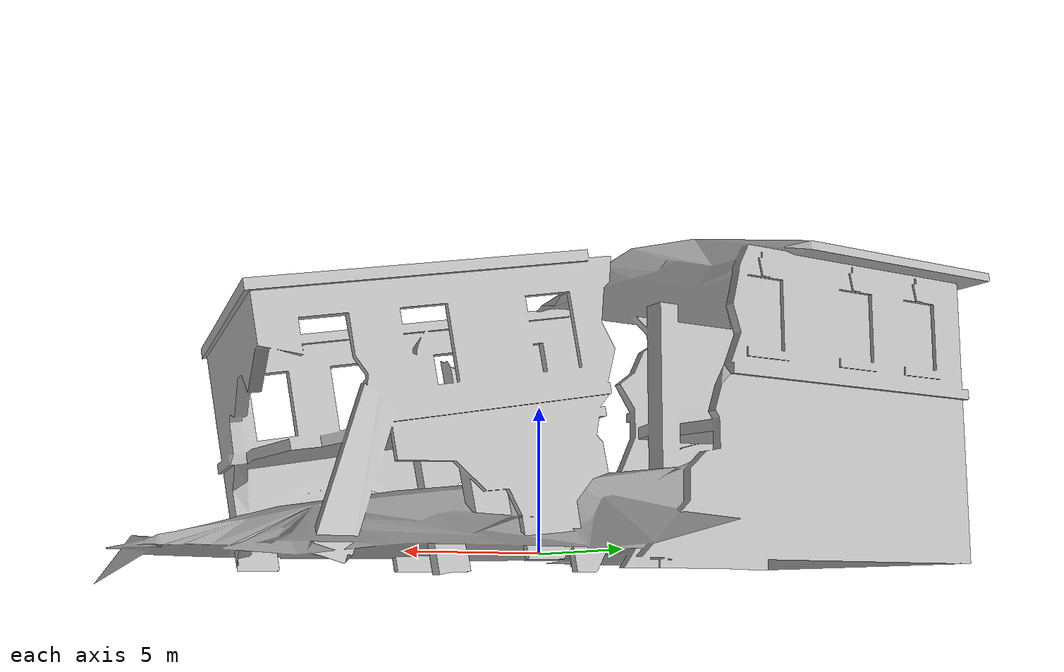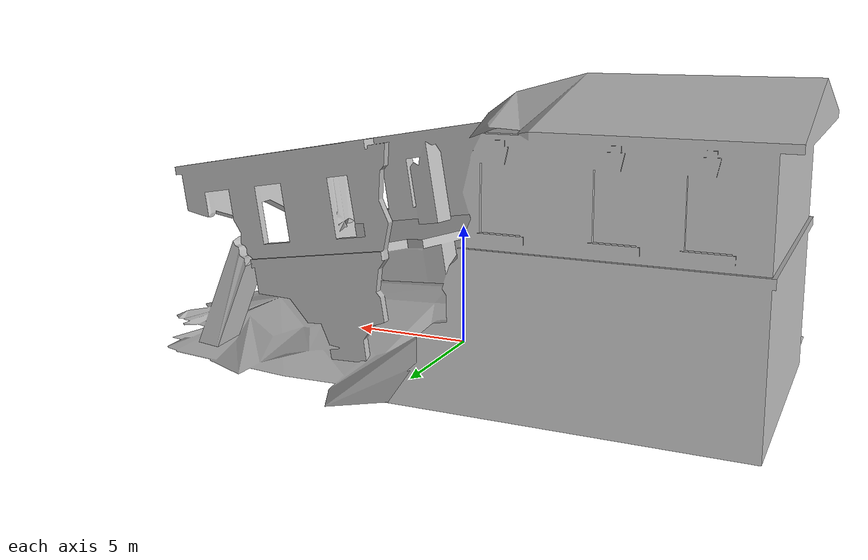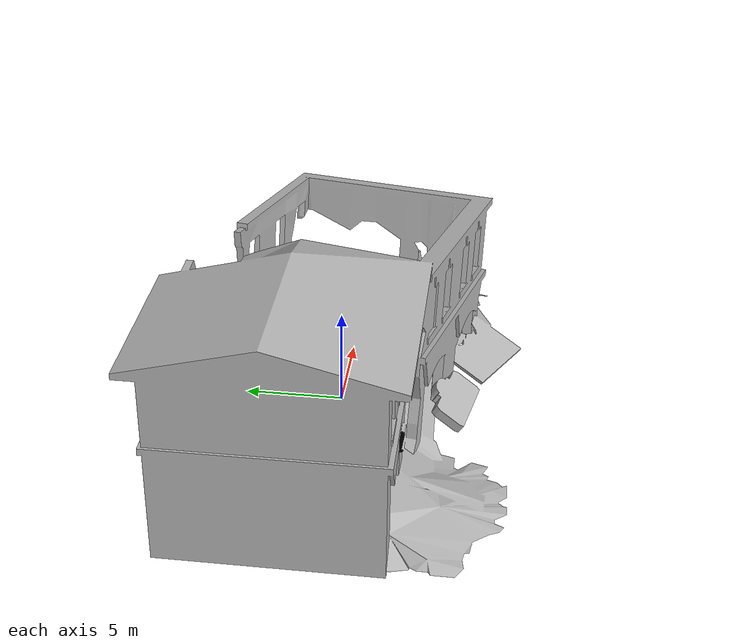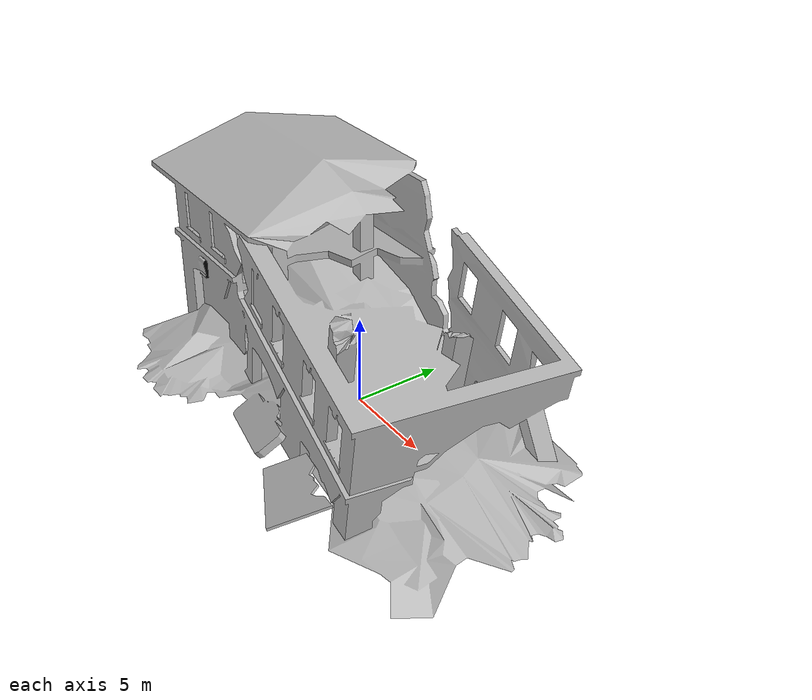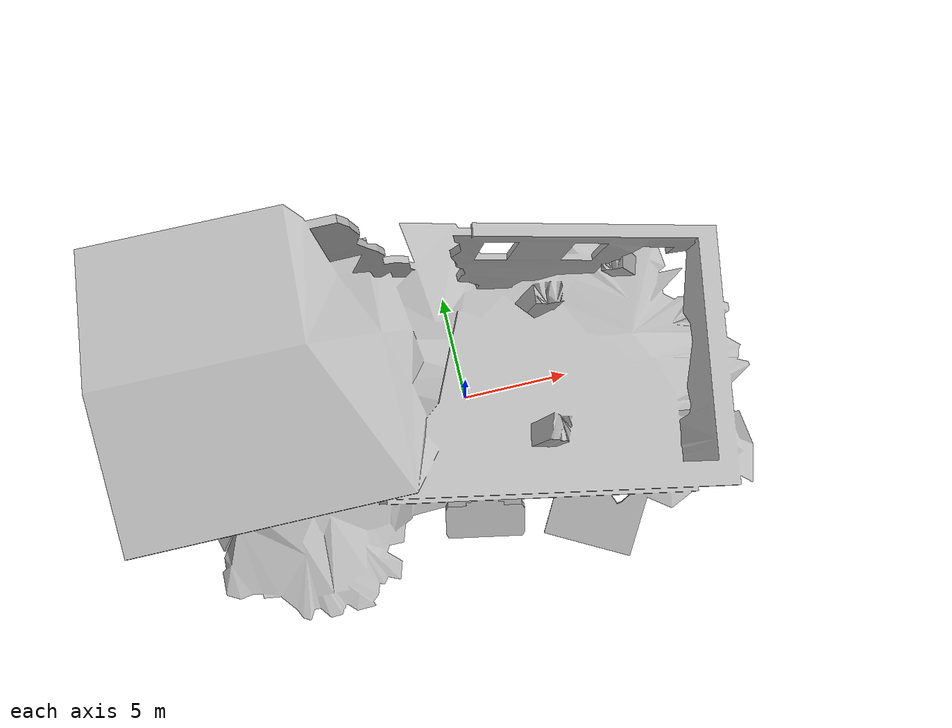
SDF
<?xml version="1.0" ?>
<sdf version="1.6">
  <model name="collapsed_fire_station">
    <static>true</static>
    <link name="link">
      <collision name="collision">
        <geometry>
          <mesh>
            <uri>model://collapsed_fire_station/meshes/collapsed_fire_station.dae</uri>
          </mesh>
        </geometry>
      </collision>
      <visual name="visual">
        <geometry>
          <mesh>
            <uri>model://collapsed_fire_station/meshes/collapsed_fire_station.dae</uri>
          </mesh>
        </geometry>
      </visual>
    </link>
  </model>
</sdf>
